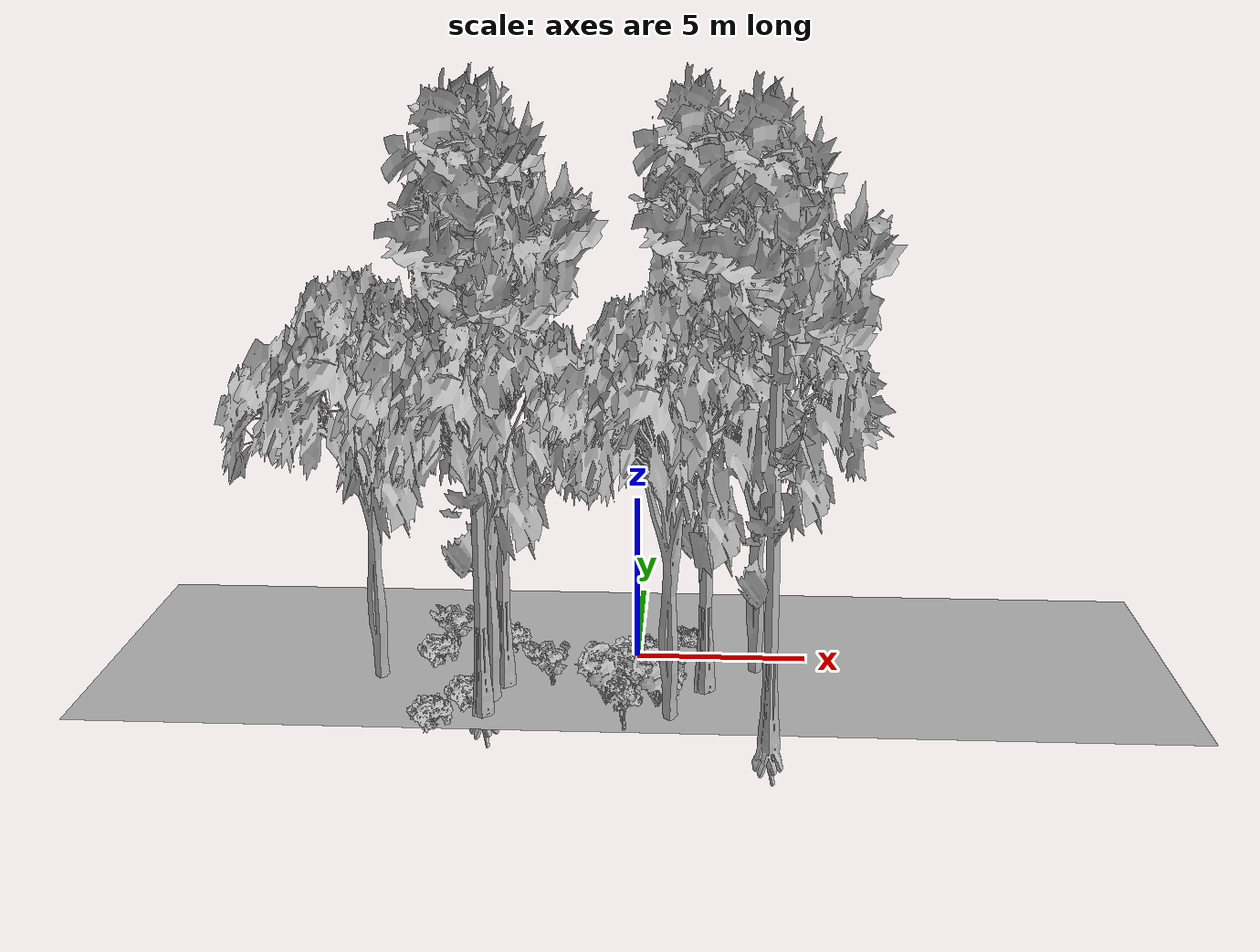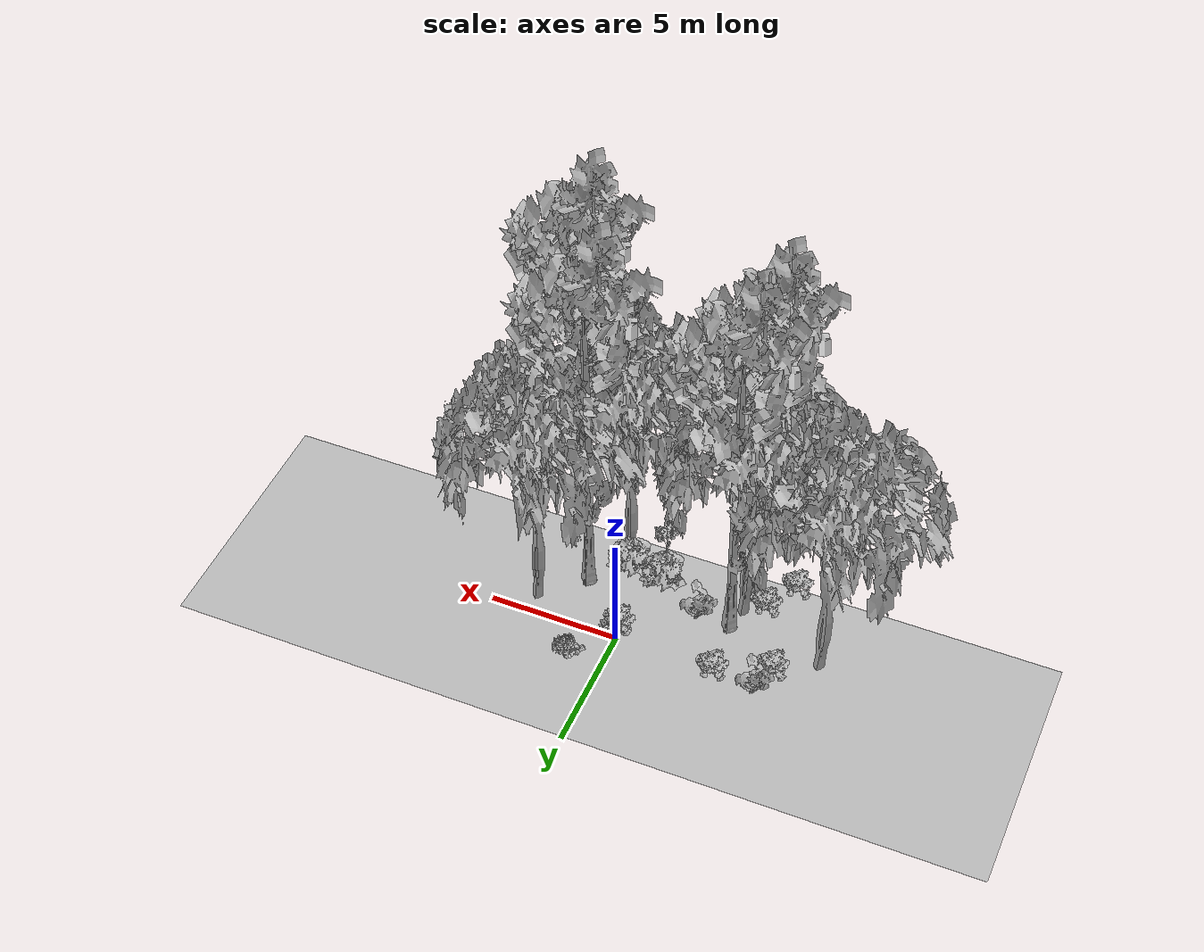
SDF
<sdf version="1.7">
 <world name="default">
  <model name="ground_plane">
   <static>1</static>
   <link name="link">
    <collision name="collision">
     <geometry><plane><normal>0 0 1</normal><size>100 100</size></plane></geometry>
     <surface><contact><ode><min_depth>0.01</min_depth><max_vel>0</max_vel></ode></contact></surface>
    </collision>
    <visual name="grass">
     <cast_shadows>0</cast_shadows>
     <geometry>
      <mesh>
       <scale>0.5814285714285714 0.18142857142857144 0.1</scale>
       <uri>file://grass_plane/meshes/grass_plane.dae</uri>
      </mesh>
     </geometry>
    </visual>
   </link>
  </model>
  <model name="Tree 92">
   <static>1</static>
   <pose>-7.497105886066656 -1.7175427004247705 0 1.57079 -0 0</pose>
   <link name="link">
    <collision name="collision">
     <geometry><mesh><scale>3.5 5 3.5</scale><uri>model://tree_2/meshes/tree_2.obj</uri></mesh></geometry>
    </collision>
    <visual name="visual">
     <geometry><mesh><scale>3.5 5 3.5</scale><uri>model://tree_2/meshes/tree_2.obj</uri></mesh></geometry>
    </visual>
   </link>
  </model>
  <model name="Tree 179">
   <static>1</static>
   <pose>-4.0218012155378275 -3.084380858002163 0 1.57079 -0 0</pose>
   <link name="link">
    <collision name="collision">
     <geometry><mesh><scale>3.5 5 3.5</scale><uri>model://tree_2/meshes/tree_2.obj</uri></mesh></geometry>
    </collision>
    <visual name="visual">
     <geometry><mesh><scale>3.5 5 3.5</scale><uri>model://tree_2/meshes/tree_2.obj</uri></mesh></geometry>
    </visual>
   </link>
  </model>
  <model name="Tree 186">
   <static>1</static>
   <pose>-4.085514798561768 -3.9805083261386756 0 1.57079 -0 0</pose>
   <link name="link">
    <collision name="collision">
     <geometry><mesh><scale>3.5 5 3.5</scale><uri>model://tree_9/meshes/tree_9.obj</uri></mesh></geometry>
    </collision>
    <visual name="visual">
     <geometry><mesh><scale>3.5 5 3.5</scale><uri>model://tree_9/meshes/tree_9.obj</uri></mesh></geometry>
    </visual>
   </link>
  </model>
  <model name="Tree 239">
   <static>1</static>
   <pose>3.413935197976407 -0.8642723103357284 0 1.57079 -0 0</pose>
   <link name="link">
    <collision name="collision">
     <geometry><mesh><scale>3.5 5 3.5</scale><uri>model://tree_2/meshes/tree_2.obj</uri></mesh></geometry>
    </collision>
    <visual name="visual">
     <geometry><mesh><scale>3.5 5 3.5</scale><uri>model://tree_2/meshes/tree_2.obj</uri></mesh></geometry>
    </visual>
   </link>
  </model>
  <model name="Tree 240">
   <static>1</static>
   <pose>0.9879025002546342 -3.9808969598933217 0 1.57079 -0 0</pose>
   <link name="link">
    <collision name="collision">
     <geometry><mesh><scale>3.5 5 3.5</scale><uri>model://tree_2/meshes/tree_2.obj</uri></mesh></geometry>
    </collision>
    <visual name="visual">
     <geometry><mesh><scale>3.5 5 3.5</scale><uri>model://tree_2/meshes/tree_2.obj</uri></mesh></geometry>
    </visual>
   </link>
  </model>
  <model name="Tree 259">
   <static>1</static>
   <pose>2.0298054629012796 -2.2222322153325287 0 1.57079 -0 0</pose>
   <link name="link">
    <collision name="collision">
     <geometry><mesh><scale>3.5 5 3.5</scale><uri>model://tree_9/meshes/tree_9.obj</uri></mesh></geometry>
    </collision>
    <visual name="visual">
     <geometry><mesh><scale>3.5 5 3.5</scale><uri>model://tree_9/meshes/tree_9.obj</uri></mesh></geometry>
    </visual>
   </link>
  </model>
  <model name="Tree 360">
   <static>1</static>
   <pose>3.735274860122665 -5.715621196398764 0 1.57079 -0 0</pose>
   <link name="link">
    <collision name="collision">
     <geometry><mesh><scale>3.5 5 3.5</scale><uri>model://tree_9/meshes/tree_9.obj</uri></mesh></geometry>
    </collision>
    <visual name="visual">
     <geometry><mesh><scale>3.5 5 3.5</scale><uri>model://tree_9/meshes/tree_9.obj</uri></mesh></geometry>
    </visual>
   </link>
  </model>
  <model name="Tree 408">
   <static>1</static>
   <pose>-3.710010456125488 -2.1224572610104087 0 1.57079 -0 0</pose>
   <link name="link">
    <collision name="collision">
     <geometry><mesh><scale>3.5 5 3.5</scale><uri>model://tree_9/meshes/tree_9.obj</uri></mesh></geometry>
    </collision>
    <visual name="visual">
     <geometry><mesh><scale>3.5 5 3.5</scale><uri>model://tree_9/meshes/tree_9.obj</uri></mesh></geometry>
    </visual>
   </link>
  </model>
  <model name="Bush 23">
   <static>1</static>
   <pose>-5.372247453896392 -4.791699891014609 0 1.57079 -0 0</pose>
   <link name="link">
    <collision name="collision">
     <geometry><mesh><scale>2 2 2</scale><uri>model://bush_3/meshes/bush_3.obj</uri></mesh></geometry>
     <surface><contact><collide_without_contact>false</collide_without_contact></contact></surface>
    </collision>
    <visual name="visual">
     <geometry><mesh><scale>2 2 2</scale><uri>model://bush_3/meshes/bush_3.obj</uri></mesh></geometry>
    </visual>
   </link>
  </model>
  <model name="Bush 48">
   <static>1</static>
   <pose>0.16578315967629464 -0.5761806858326182 0 1.57079 -0 0</pose>
   <link name="link">
    <collision name="collision">
     <geometry><mesh><scale>2 2 2</scale><uri>model://bush_3/meshes/bush_3.obj</uri></mesh></geometry>
     <surface><contact><collide_without_contact>false</collide_without_contact></contact></surface>
    </collision>
    <visual name="visual">
     <geometry><mesh><scale>2 2 2</scale><uri>model://bush_3/meshes/bush_3.obj</uri></mesh></geometry>
    </visual>
   </link>
  </model>
  <model name="Bush 71">
   <static>1</static>
   <pose>0.2378931831404998 -0.41664748773942506 0 1.57079 -0 0</pose>
   <link name="link">
    <collision name="collision">
     <geometry><mesh><scale>2 2 2</scale><uri>model://bush_2/meshes/bush_2.obj</uri></mesh></geometry>
     <surface><contact><collide_without_contact>false</collide_without_contact></contact></surface>
    </collision>
    <visual name="visual">
     <geometry><mesh><scale>2 2 2</scale><uri>model://bush_2/meshes/bush_2.obj</uri></mesh></geometry>
    </visual>
   </link>
  </model>
  <model name="Bush 101">
   <static>1</static>
   <pose>1.4830882843089626 1.0640376449409388 0 1.57079 -0 0</pose>
   <link name="link">
    <collision name="collision">
     <geometry><mesh><scale>2 2 2</scale><uri>model://bush_2/meshes/bush_2.obj</uri></mesh></geometry>
     <surface><contact><collide_without_contact>false</collide_without_contact></contact></surface>
    </collision>
    <visual name="visual">
     <geometry><mesh><scale>2 2 2</scale><uri>model://bush_2/meshes/bush_2.obj</uri></mesh></geometry>
    </visual>
   </link>
  </model>
  <model name="Bush 122">
   <static>1</static>
   <pose>-3.7915342867651773 0.08953204328141595 0 1.57079 -0 0</pose>
   <link name="link">
    <collision name="collision">
     <geometry><mesh><scale>2 2 2</scale><uri>model://bush_3/meshes/bush_3.obj</uri></mesh></geometry>
     <surface><contact><collide_without_contact>false</collide_without_contact></contact></surface>
    </collision>
    <visual name="visual">
     <geometry><mesh><scale>2 2 2</scale><uri>model://bush_3/meshes/bush_3.obj</uri></mesh></geometry>
    </visual>
   </link>
  </model>
  <model name="Bush 134">
   <static>1</static>
   <pose>1.4398425444139704 1.1195230906105138 0 1.57079 -0 0</pose>
   <link name="link">
    <collision name="collision">
     <geometry><mesh><scale>2 2 2</scale><uri>model://bush_2/meshes/bush_2.obj</uri></mesh></geometry>
     <surface><contact><collide_without_contact>false</collide_without_contact></contact></surface>
    </collision>
    <visual name="visual">
     <geometry><mesh><scale>2 2 2</scale><uri>model://bush_2/meshes/bush_2.obj</uri></mesh></geometry>
    </visual>
   </link>
  </model>
  <model name="Bush 234">
   <static>1</static>
   <pose>0.7021271145504286 -3.32518722436588 0 1.57079 -0 0</pose>
   <link name="link">
    <collision name="collision">
     <geometry><mesh><scale>2 2 2</scale><uri>model://bush_1/meshes/bush_1.obj</uri></mesh></geometry>
     <surface><contact><collide_without_contact>false</collide_without_contact></contact></surface>
    </collision>
    <visual name="visual">
     <geometry><mesh><scale>2 2 2</scale><uri>model://bush_1/meshes/bush_1.obj</uri></mesh></geometry>
    </visual>
   </link>
  </model>
  <model name="Bush 239">
   <static>1</static>
   <pose>-2.369574684266489 -2.0692966079854322 0 1.57079 -0 0</pose>
   <link name="link">
    <collision name="collision">
     <geometry><mesh><scale>2 2 2</scale><uri>model://bush_0/meshes/bush_0.obj</uri></mesh></geometry>
     <surface><contact><collide_without_contact>false</collide_without_contact></contact></surface>
    </collision>
    <visual name="visual">
     <geometry><mesh><scale>2 2 2</scale><uri>model://bush_0/meshes/bush_0.obj</uri></mesh></geometry>
    </visual>
   </link>
  </model>
  <model name="Bush 248">
   <static>1</static>
   <pose>-5.5039317151573215 0.434655399114968 0 1.57079 -0 0</pose>
   <link name="link">
    <collision name="collision">
     <geometry><mesh><scale>2 2 2</scale><uri>model://bush_0/meshes/bush_0.obj</uri></mesh></geometry>
     <surface><contact><collide_without_contact>false</collide_without_contact></contact></surface>
    </collision>
    <visual name="visual">
     <geometry><mesh><scale>2 2 2</scale><uri>model://bush_0/meshes/bush_0.obj</uri></mesh></geometry>
    </visual>
   </link>
  </model>
  <model name="Bush 281">
   <static>1</static>
   <pose>-5.8397864778471344 -0.7777764511057477 0 1.57079 -0 0</pose>
   <link name="link">
    <collision name="collision">
     <geometry><mesh><scale>2 2 2</scale><uri>model://bush_3/meshes/bush_3.obj</uri></mesh></geometry>
     <surface><contact><collide_without_contact>false</collide_without_contact></contact></surface>
    </collision>
    <visual name="visual">
     <geometry><mesh><scale>2 2 2</scale><uri>model://bush_3/meshes/bush_3.obj</uri></mesh></geometry>
    </visual>
   </link>
  </model>
  <model name="Bush 302">
   <static>1</static>
   <pose>-4.578660179354657 -3.515671222371896 0 1.57079 -0 0</pose>
   <link name="link">
    <collision name="collision">
     <geometry><mesh><scale>2 2 2</scale><uri>model://bush_3/meshes/bush_3.obj</uri></mesh></geometry>
     <surface><contact><collide_without_contact>false</collide_without_contact></contact></surface>
    </collision>
    <visual name="visual">
     <geometry><mesh><scale>2 2 2</scale><uri>model://bush_3/meshes/bush_3.obj</uri></mesh></geometry>
    </visual>
   </link>
  </model>
  <model name="Bush 321">
   <static>1</static>
   <pose>-0.13441184363031766 -4.771016393896122 0 1.57079 -0 0</pose>
   <link name="link">
    <collision name="collision">
     <geometry><mesh><scale>2 2 2</scale><uri>model://bush_5/meshes/bush_5.obj</uri></mesh></geometry>
     <surface><contact><collide_without_contact>false</collide_without_contact></contact></surface>
    </collision>
    <visual name="visual">
     <geometry><mesh><scale>2 2 2</scale><uri>model://bush_5/meshes/bush_5.obj</uri></mesh></geometry>
    </visual>
   </link>
  </model>
  <model name="Bush 324">
   <static>1</static>
   <pose>-0.7221437626848584 -3.148877637324052 0 1.57079 -0 0</pose>
   <link name="link">
    <collision name="collision">
     <geometry><mesh><scale>2 2 2</scale><uri>model://bush_1/meshes/bush_1.obj</uri></mesh></geometry>
     <surface><contact><collide_without_contact>false</collide_without_contact></contact></surface>
    </collision>
    <visual name="visual">
     <geometry><mesh><scale>2 2 2</scale><uri>model://bush_1/meshes/bush_1.obj</uri></mesh></geometry>
    </visual>
   </link>
  </model>
 </world>
</sdf>
